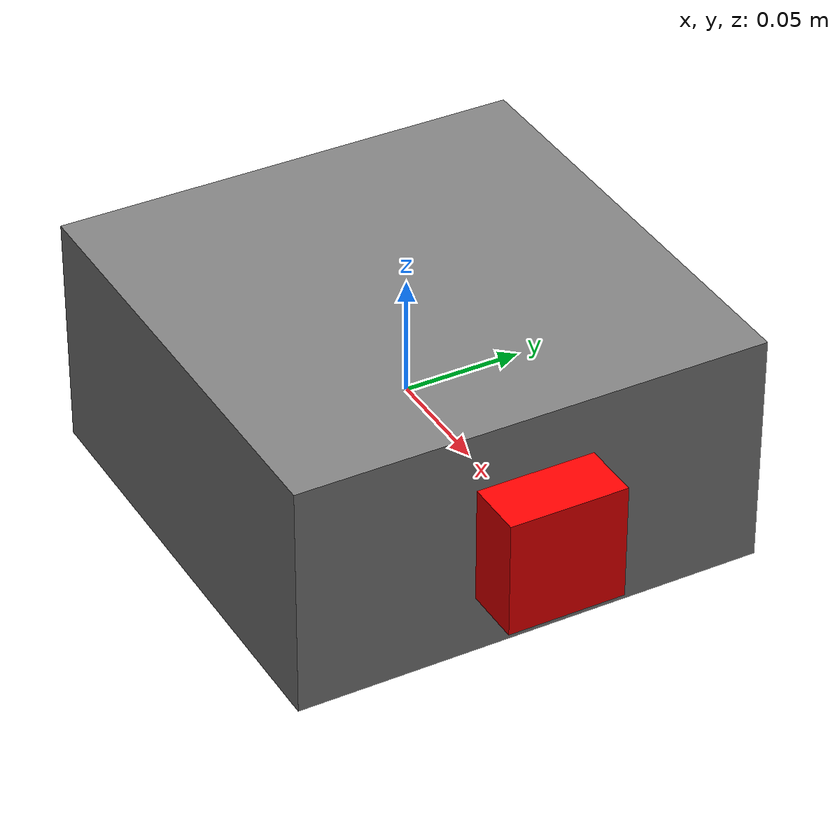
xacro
<?xml version="1.0"?>
<robot xmlns:xacro="http://www.ros.org/wiki/xacro" name="drone">
  <xacro:property name="M_PI" value="3.1415926535897931" />

  <link name="base_link">
    <visual>
      <geometry>
        <box size="0.2 0.2 0.1"/>
      </geometry>
      <material name="grey">
        <color rgba="0.5 0.5 0.5 1"/>
      </material>
    </visual>
    <collision>
      <geometry>
        <box size="0.2 0.2 0.1"/>
      </geometry>
    </collision>
    <inertial>
      <mass value="1.0"/>
      <inertia ixx="0.003" ixy="0.0" ixz="0.0" iyy="0.003" iyz="0.0" izz="0.003"/>
    </inertial>
  </link>

  <link name="camera_link">
    <visual>
      <geometry>
        <box size="0.05 0.05 0.05"/>
      </geometry>
      <material name="red">
        <color rgba="1 0 0 1"/>
      </material>
    </visual>
    <collision>
      <geometry>
        <box size="0.05 0.05 0.05"/>
      </geometry>
    </collision>
    <inertial>
      <mass value="0.1"/>
      <inertia ixx="0.0001" ixy="0" ixz="0" iyy="0.0001" iyz="0" izz="0.0001"/>
    </inertial>
  </link>

  <joint name="camera_joint" type="fixed">
    <parent link="base_link"/>
    <child link="camera_link"/>
    <origin xyz="0.1 0 0" rpy="0 0 0"/>
  </joint>

  <gazebo reference="base_link">
    <material>Gazebo/Grey</material>
  </gazebo>

  <gazebo reference="camera_link">
    <material>Gazebo/Red</material>
    <sensor type="camera" name="camera">
      <update_rate>30.0</update_rate>
      <camera name="head">
        <horizontal_fov>1.3962634</horizontal_fov>
        <image>
          <width>800</width>
          <height>800</height>
          <format>R8G8B8</format>
        </image>
        <clip>
          <near>0.02</near>
          <far>300</far>
        </clip>
      </camera>
    </sensor>
  </gazebo>

  <gazebo>
    <plugin name="object_controller" filename="libgazebo_ros_planar_move.so">
      <commandTopic>cmd_vel</commandTopic>
      <odometryTopic>odom</odometryTopic>
      <odometryFrame>odom</odometryFrame>
      <odometryRate>20.0</odometryRate>
      <robotBaseFrame>base_link</robotBaseFrame>
    </plugin>
  </gazebo>
</robot>
